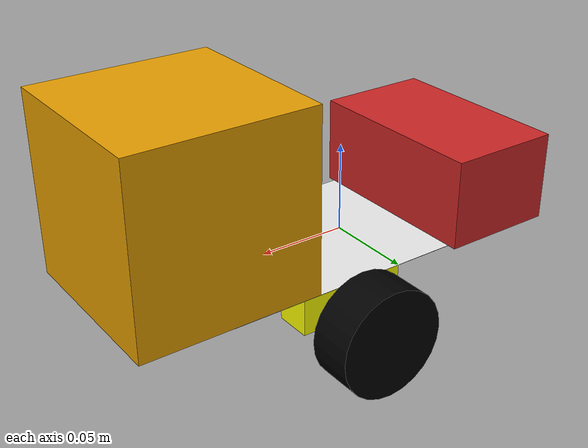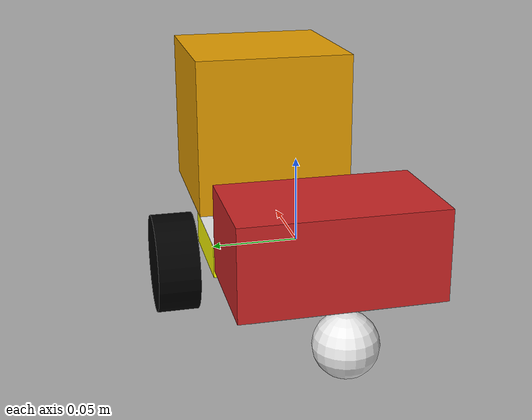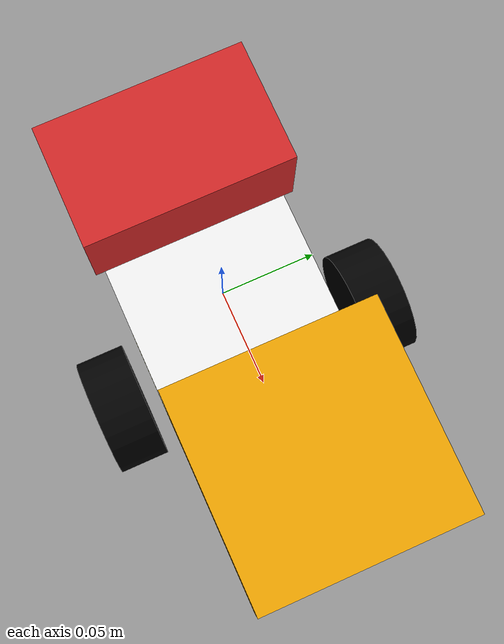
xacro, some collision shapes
<?xml version='1.0'?>

<robot name="meine_bot" xmlns:xacro="http://www.ros.org/wiki/xacro">

  <!-- IF YOU WANT CHANGE SOME DIMENSION IN THE ROBOT SEE THIS FILE -->
  <xacro:include filename="$(find meine_bot)/urdf/meine_bot_values.xacro"/>

  <!-- IF YOU WANT CHANGE SOME BEHAVIOR FROM THE INERTIAL OR WHEEL SEE THIS FILE-->
  <xacro:include filename="$(find meine_bot)/urdf/meine_bot_macros.xacro"/>

  <xacro:include filename="$(find meine_bot)/urdf/meine_bot.gazebo"/>

  <link name="robot_footprint"></link>
  <joint name="robot_footprint_joint" type="fixed">
    <origin xyz="0 0 0" rpy="0 0 0" />
    <parent link="robot_footprint"/>
      <child link="chassis" />
  </joint>

  <link name="chassis">
    <visual>
      <origin xyz="0 0 0" rpy="0 0 0"/>
      <geometry>
        <box size="${length} ${width} ${height}"/>
      </geometry>
    </visual>

    <collision>
      <origin xyz="0 0 0" rpy="0 0 0"/>
      <geometry>
        <box size="${length} ${width} ${height}"/>
      </geometry>
    </collision>

    <collision name='back_caster_collision'>
      <origin xyz="${-length/2} 0 ${-radius_caster} " rpy=" 0 0 0"/>
      <geometry>
        <sphere radius="${radius_caster - 0.0001}"/>
      </geometry>
    </collision>

    <visual name='back_caster_visual'>
      <origin xyz="${-length/2} 0 ${-radius_caster} " rpy=" 0 0 0"/>
      <geometry>
        <sphere radius="${radius_caster}"/>
      </geometry>
    </visual>

    <xacro:default_inertial mass="${chassi_mass}"/>

  </link>

  <link name="battery">
    <visual>
      <origin xyz="0 0 0" rpy="0 0 ${pi/2}"/>
      <geometry>
        <box size="${battery_length} ${battery_width} ${battery_height}"/>
      </geometry>
    </visual>

    <collision>
      <origin xyz="0 0 0" rpy="0 0 ${pi/2}"/>
      <geometry>
        <box size="${battery_length} ${battery_width} ${battery_height}"/>
      </geometry>
    </collision>

    <xacro:default_inertial mass="${battery_mass}"/>

  </link>

  <joint name="battery_chassi_joint" type="fixed">
    <origin xyz="${- length/2 + battery_width/2} 0 ${battery_height/2}" rpy="0 0 0" />
    <parent link="chassis"/>
      <child link="battery"/>
  </joint>

  <xacro:motor_default name="left" reflect="1"/>
  <xacro:motor_default name="right" reflect="-1"/>

  <xacro:wheel_default name="left" reflect="1"/>
  <xacro:wheel_default name="right" reflect="-1"/>

  <link name="camera">
    <inertial>
      <mass value ="0.1"/>
      <origin xyz="0 0 0" rpy="0 0 0"/>
      <inertia
        ixx="1e-6" ixy="0" ixz="0"
        iyy="1e-6" iyz="0"
        izz="1e-6"
      />
    </inertial>

    <collision name="collision">
      <origin xyz="0 0 0" rpy="0 0 0"/>
      <geometry>
        <box size="${camera_length} ${camera_width} ${camera_height}"/>
      </geometry>
    </collision>

    <visual name='camera_visual'>
      <origin xyz="0 0 0" rpy="0 0 0"/>
      <geometry>
        <box size="${camera_length} ${camera_width} ${camera_height}"/>
      </geometry>
      <material name="">
          <color rgba="0 0 1 0.5"/>
      </material>
    </visual>

  </link>

  <joint name="camera_joint" type="fixed">
    <origin xyz="${length/2} 0 ${-camera_height /2}" rpy="0 0 0"/>
    <parent link="chassis"/>
    <child link="camera" />
  </joint>

  <link name="hokuyo">
    <inertial>
      <mass value ="0.1"/>
      <origin xyz="0 0 0" rpy="0 0 0"/>
      <inertia
        ixx="1e-6" ixy="0" ixz="0"
        iyy="1e-6" iyz="0"
        izz="1e-6"
      />
    </inertial>

    <collision name="collision">
      <origin xyz="0 0 0" rpy="0 0 0"/>
      <geometry>
        <box size="${hokuyo_width} ${hokuyo_width} ${hokuyo_width}"/>
      </geometry>
    </collision>

    <visual name='hokuyo_visual'>
      <origin xyz="0 0 0" rpy="0 0 0"/>
      <geometry>
        <mesh filename="package://udacity_bot/meshes/hokuyo.dae"/>
      </geometry>
    </visual>

  </link>

  <joint name="hokuyo_joint" type="fixed">
    <origin xyz="${length/2 } 0 ${hokuyo_width/2}" rpy="0 0 0"/>
    <parent link="chassis"/>
    <child link="hokuyo" />
  </joint>

</robot>

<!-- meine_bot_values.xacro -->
<robot name="meine_bot" xmlns:xacro="http://www.ros.org/wiki/xacro">

  <!-- Constants for the robot -->

  <!-- CHASSI-->

  <xacro:property name="width" value="0.1"/>
  <xacro:property name="length" value="0.2"/>
  <xacro:property name="height" value="0.0002"/>
  <xacro:property name="chassi_mass" value="5"/>

  <!-- MOTOR -->
  <xacro:property name="motor_width" value="0.02"/>
  <xacro:property name="motor_length" value="0.06"/>
  <xacro:property name="motor_height" value="0.02"/>

  <xacro:property name="x_pos" value="-0.03"/>
  <xacro:property name="y_pos" value="${width/2 - motor_width/2}"/>
  <xacro:property name="z_pos" value="${-motor_height/2}"/>

  <!-- BATTERY AND PI -->
  <xacro:property name="battery_width" value="0.065"/>
  <xacro:property name="battery_length" value="0.11"/>
  <xacro:property name="battery_height" value="0.05"/>
  <xacro:property name="battery_mass" value="5"/>

  <!-- CAMERA -->
  <xacro:property name="camera_width" value="0.03"/>
  <xacro:property name="camera_length" value="0.03"/>
  <xacro:property name="camera_height" value="0.02"/>

  <!-- HOKUYO -->
  <xacro:property name="hokuyo_width" value="0.1"/>

  <!-- CASTER-->
  <xacro:property name="radius_caster" value="0.01725"/>

  <!-- WHEEL-->

  <xacro:property name="radius_wheel" value="0.03"/>
  <xacro:property name="length_wheel" value="0.025"/>
  <xacro:property name="wheel_mass" value="5"/>

  <!-- INERTIA-->
  <xacro:property name='inertial' value="0.1"/>

</robot>

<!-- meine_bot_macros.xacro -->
<robot name="meine_bot" xmlns:xacro="http://www.ros.org/wiki/xacro">

  <!-- Default Inertial -->
  <xacro:macro name="default_inertial" params="mass">
    <inertial>
      <origin xyz="0 0 0" rpy="0 0 0"/>
      <mass value="${mass}"/>
      <inertia ixx="${inertial}" ixy="0.0" ixz="0.0"
                 iyy="${inertial}" iyz="0.0"
                 izz="${inertial}"
                 />
    </inertial>
  </xacro:macro>

  <xacro:macro name="wheel_default" params="name reflect">
    <link name='wheel_${name}'>

      <xacro:default_inertial mass="${wheel_mass}"/>

      <collision name='wheel_${name}_collision'>
        <origin xyz="0 ${reflect * motor_width} 0" rpy="0 ${reflect * pi/2} ${reflect * pi/2} "/>
        <geometry>
          <cylinder radius="${radius_wheel}" length="${length_wheel}"/>
        </geometry>
      </collision>

      <visual name='wheel_${name}_visual'>
        <origin xyz="0 ${reflect * motor_width} 0" rpy="0 ${reflect * pi/2} ${reflect * pi/2} "/>
        <geometry>
          <cylinder radius="${radius_wheel}" length="${length_wheel}"/>
        </geometry>
        <material name="black">
          <color rgba="0 0 0 1"/>
        </material>
      </visual>

    </link>

    <joint name="wheel_${name}_hinge" type="continuous">
      <origin xyz="0 ${reflect * 0.01} ${z_pos}" rpy="0 0 0" />
      <parent link="motor_${name}"/>
      <child link='wheel_${name}'  />
      <axis xyz="0 1 0" rpy="0 0 0"/>
      <dynamics damping=".01" friction=".01"/>
    </joint>
  </xacro:macro>

  <xacro:macro name="motor_default" params="name reflect">
    <link name='motor_${name}'>

      <xacro:default_inertial mass="2"/>

      <collision name='motor_${name}_collision'>
        <origin xyz="0 0 0" rpy="0 0 0"/>
        <geometry>
          <box size="${motor_length} ${motor_width} ${motor_height}"/>
        </geometry>
      </collision>

      <visual name='motor_${name}_visual'>
        <origin xyz="0 0 0" rpy="0 0 0"/>
        <geometry>
          <box size="${motor_length} ${motor_width} ${motor_height}"/>
        </geometry>
        <material name="yellow">
          <color rgba="1 1 0 1"/>
        </material>
      </visual>

    </link>

    <joint name="motor_${name}_hinge" type="fixed">
      <origin xyz="${-x_pos} ${reflect * y_pos} ${z_pos}" rpy="0 0 0" />
      <parent link="chassis"/>
      <child link='motor_${name}'  />
    </joint>
  </xacro:macro>

</robot>
